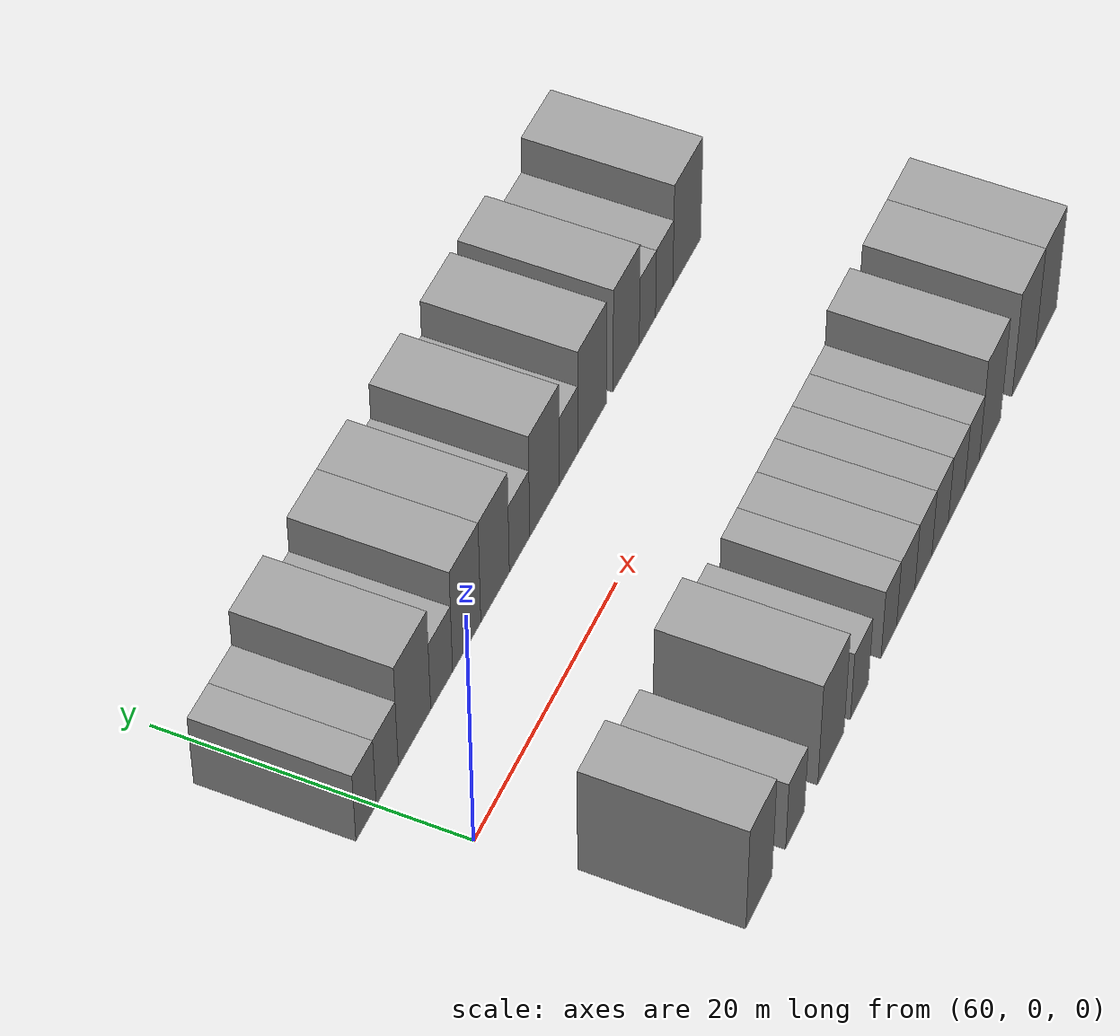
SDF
<sdf version="1.6">
 <world name="default">
  <model name="building_13">
   <static>1</static>
   <pose>58.6857 11.0000 0 0.000000 0.000000 1.570796</pose>
   <link name="link">
    <pose>0 0 3.00 0 0 0</pose>
    <collision name="collision"><geometry><box><size>10.0000 2.6495 6.0000</size></box></geometry></collision>
    <visual name="visual">
     <cast_shadows>0</cast_shadows>
     <geometry><box><size>10.0000 2.6495 6.0000</size></box></geometry>
     <material>
      <script>
       <uri>model://grey_wall/materials/scripts</uri>
       <uri>model://grey_wall/materials/textures</uri>
       <name>vrc/grey_wall</name>
      </script>
     </material>
    </visual>
   </link>
  </model>
  <model name="building_14">
   <static>1</static>
   <pose>61.4664 11.0000 0 0.000000 0.000000 1.570796</pose>
   <link name="link">
    <pose>0 0 3.00 0 0 0</pose>
    <collision name="collision"><geometry><box><size>10.0000 2.9119 6.0000</size></box></geometry></collision>
    <visual name="visual">
     <cast_shadows>0</cast_shadows>
     <geometry><box><size>10.0000 2.9119 6.0000</size></box></geometry>
     <material>
      <script>
       <uri>model://grey_wall/materials/scripts</uri>
       <uri>model://grey_wall/materials/textures</uri>
       <name>vrc/grey_wall</name>
      </script>
     </material>
    </visual>
   </link>
  </model>
  <model name="building_15">
   <static>1</static>
   <pose>65.0920 11.0000 0 0.000000 0.000000 1.570796</pose>
   <link name="link">
    <pose>0 0 4.50 0 0 0</pose>
    <collision name="collision"><geometry><box><size>10.0000 4.3392 9.0000</size></box></geometry></collision>
    <visual name="visual">
     <cast_shadows>0</cast_shadows>
     <geometry><box><size>10.0000 4.3392 9.0000</size></box></geometry>
     <material>
      <script>
       <uri>model://grey_wall/materials/scripts</uri>
       <uri>model://grey_wall/materials/textures</uri>
       <name>vrc/grey_wall</name>
      </script>
     </material>
    </visual>
   </link>
  </model>
  <model name="building_16">
   <static>1</static>
   <pose>68.7503 11.0000 0 0.000000 0.000000 1.570796</pose>
   <link name="link">
    <pose>0 0 3.00 0 0 0</pose>
    <collision name="collision"><geometry><box><size>10.0000 2.9774 6.0000</size></box></geometry></collision>
    <visual name="visual">
     <cast_shadows>0</cast_shadows>
     <geometry><box><size>10.0000 2.9774 6.0000</size></box></geometry>
     <material>
      <script>
       <uri>model://grey_wall/materials/scripts</uri>
       <uri>model://grey_wall/materials/textures</uri>
       <name>vrc/grey_wall</name>
      </script>
     </material>
    </visual>
   </link>
  </model>
  <model name="building_17">
   <static>1</static>
   <pose>72.1875 11.0000 0 0.000000 0.000000 1.570796</pose>
   <link name="link">
    <pose>0 0 4.50 0 0 0</pose>
    <collision name="collision"><geometry><box><size>10.0000 3.8970 9.0000</size></box></geometry></collision>
    <visual name="visual">
     <cast_shadows>0</cast_shadows>
     <geometry><box><size>10.0000 3.8970 9.0000</size></box></geometry>
     <material>
      <script>
       <uri>model://grey_wall/materials/scripts</uri>
       <uri>model://grey_wall/materials/textures</uri>
       <name>vrc/grey_wall</name>
      </script>
     </material>
    </visual>
   </link>
  </model>
  <model name="building_18">
   <static>1</static>
   <pose>76.1417 11.0000 0 0.000000 0.000000 1.570796</pose>
   <link name="link">
    <pose>0 0 4.50 0 0 0</pose>
    <collision name="collision"><geometry><box><size>10.0000 4.0115 9.0000</size></box></geometry></collision>
    <visual name="visual">
     <cast_shadows>0</cast_shadows>
     <geometry><box><size>10.0000 4.0115 9.0000</size></box></geometry>
     <material>
      <script>
       <uri>model://grey_wall/materials/scripts</uri>
       <uri>model://grey_wall/materials/textures</uri>
       <name>vrc/grey_wall</name>
      </script>
     </material>
    </visual>
   </link>
  </model>
  <model name="building_19">
   <static>1</static>
   <pose>79.6053 11.0000 0 0.000000 0.000000 1.570796</pose>
   <link name="link">
    <pose>0 0 3.00 0 0 0</pose>
    <collision name="collision"><geometry><box><size>10.0000 2.9156 6.0000</size></box></geometry></collision>
    <visual name="visual">
     <cast_shadows>0</cast_shadows>
     <geometry><box><size>10.0000 2.9156 6.0000</size></box></geometry>
     <material>
      <script>
       <uri>model://grey_wall/materials/scripts</uri>
       <uri>model://grey_wall/materials/textures</uri>
       <name>vrc/grey_wall</name>
      </script>
     </material>
    </visual>
   </link>
  </model>
  <model name="building_20">
   <static>1</static>
   <pose>83.2097 11.0000 0 0.000000 0.000000 1.570796</pose>
   <link name="link">
    <pose>0 0 4.50 0 0 0</pose>
    <collision name="collision"><geometry><box><size>10.0000 4.2931 9.0000</size></box></geometry></collision>
    <visual name="visual">
     <cast_shadows>0</cast_shadows>
     <geometry><box><size>10.0000 4.2931 9.0000</size></box></geometry>
     <material>
      <script>
       <uri>model://grey_wall/materials/scripts</uri>
       <uri>model://grey_wall/materials/textures</uri>
       <name>vrc/grey_wall</name>
      </script>
     </material>
    </visual>
   </link>
  </model>
  <model name="building_21">
   <static>1</static>
   <pose>86.7155 11.0000 0 0.000000 0.000000 1.570796</pose>
   <link name="link">
    <pose>0 0 3.00 0 0 0</pose>
    <collision name="collision"><geometry><box><size>10.0000 2.7185 6.0000</size></box></geometry></collision>
    <visual name="visual">
     <cast_shadows>0</cast_shadows>
     <geometry><box><size>10.0000 2.7185 6.0000</size></box></geometry>
     <material>
      <script>
       <uri>model://grey_wall/materials/scripts</uri>
       <uri>model://grey_wall/materials/textures</uri>
       <name>vrc/grey_wall</name>
      </script>
     </material>
    </visual>
   </link>
  </model>
  <model name="building_22">
   <static>1</static>
   <pose>90.1966 11.0000 0 0.000000 0.000000 1.570796</pose>
   <link name="link">
    <pose>0 0 4.50 0 0 0</pose>
    <collision name="collision"><geometry><box><size>10.0000 4.2436 9.0000</size></box></geometry></collision>
    <visual name="visual">
     <cast_shadows>0</cast_shadows>
     <geometry><box><size>10.0000 4.2436 9.0000</size></box></geometry>
     <material>
      <script>
       <uri>model://grey_wall/materials/scripts</uri>
       <uri>model://grey_wall/materials/textures</uri>
       <name>vrc/grey_wall</name>
      </script>
     </material>
    </visual>
   </link>
  </model>
  <model name="building_23">
   <static>1</static>
   <pose>95.3163 11.0000 0 0.000000 0.000000 1.570796</pose>
   <link name="link">
    <pose>0 0 4.50 0 0 0</pose>
    <collision name="collision"><geometry><box><size>10.0000 3.9959 9.0000</size></box></geometry></collision>
    <visual name="visual">
     <cast_shadows>0</cast_shadows>
     <geometry><box><size>10.0000 3.9959 9.0000</size></box></geometry>
     <material>
      <script>
       <uri>model://grey_wall/materials/scripts</uri>
       <uri>model://grey_wall/materials/textures</uri>
       <name>vrc/grey_wall</name>
      </script>
     </material>
    </visual>
   </link>
  </model>
  <model name="building_24">
   <static>1</static>
   <pose>98.5761 11.0000 0 0.000000 0.000000 1.570796</pose>
   <link name="link">
    <pose>0 0 3.00 0 0 0</pose>
    <collision name="collision"><geometry><box><size>10.0000 2.5237 6.0000</size></box></geometry></collision>
    <visual name="visual">
     <cast_shadows>0</cast_shadows>
     <geometry><box><size>10.0000 2.5237 6.0000</size></box></geometry>
     <material>
      <script>
       <uri>model://grey_wall/materials/scripts</uri>
       <uri>model://grey_wall/materials/textures</uri>
       <name>vrc/grey_wall</name>
      </script>
     </material>
    </visual>
   </link>
  </model>
  <model name="building_25">
   <static>1</static>
   <pose>101.1797 11.0000 0 0.000000 0.000000 1.570796</pose>
   <link name="link">
    <pose>0 0 3.00 0 0 0</pose>
    <collision name="collision"><geometry><box><size>10.0000 2.6833 6.0000</size></box></geometry></collision>
    <visual name="visual">
     <cast_shadows>0</cast_shadows>
     <geometry><box><size>10.0000 2.6833 6.0000</size></box></geometry>
     <material>
      <script>
       <uri>model://grey_wall/materials/scripts</uri>
       <uri>model://grey_wall/materials/textures</uri>
       <name>vrc/grey_wall</name>
      </script>
     </material>
    </visual>
   </link>
  </model>
  <model name="building_26">
   <static>1</static>
   <pose>104.7301 11.0000 0 0.000000 0.000000 1.570796</pose>
   <link name="link">
    <pose>0 0 4.50 0 0 0</pose>
    <collision name="collision"><geometry><box><size>10.0000 4.4175 9.0000</size></box></geometry></collision>
    <visual name="visual">
     <cast_shadows>0</cast_shadows>
     <geometry><box><size>10.0000 4.4175 9.0000</size></box></geometry>
     <material>
      <script>
       <uri>model://grey_wall/materials/scripts</uri>
       <uri>model://grey_wall/materials/textures</uri>
       <name>vrc/grey_wall</name>
      </script>
     </material>
    </visual>
   </link>
  </model>
  <model name="building_68">
   <static>1</static>
   <pose>62.3948 -11.0000 0 0.000000 0.000000 1.570796</pose>
   <link name="link">
    <pose>0 0 4.50 0 0 0</pose>
    <collision name="collision"><geometry><box><size>10.0000 3.7947 9.0000</size></box></geometry></collision>
    <visual name="visual">
     <cast_shadows>0</cast_shadows>
     <geometry><box><size>10.0000 3.7947 9.0000</size></box></geometry>
     <material>
      <script>
       <uri>model://grey_wall/materials/scripts</uri>
       <uri>model://grey_wall/materials/textures</uri>
       <name>vrc/grey_wall</name>
      </script>
     </material>
    </visual>
   </link>
  </model>
  <model name="building_69">
   <static>1</static>
   <pose>67.6923 -11.0000 0 0.000000 0.000000 1.570796</pose>
   <link name="link">
    <pose>0 0 3.00 0 0 0</pose>
    <collision name="collision"><geometry><box><size>10.0000 2.8003 6.0000</size></box></geometry></collision>
    <visual name="visual">
     <cast_shadows>0</cast_shadows>
     <geometry><box><size>10.0000 2.8003 6.0000</size></box></geometry>
     <material>
      <script>
       <uri>model://grey_wall/materials/scripts</uri>
       <uri>model://grey_wall/materials/textures</uri>
       <name>vrc/grey_wall</name>
      </script>
     </material>
    </visual>
   </link>
  </model>
  <model name="building_70">
   <static>1</static>
   <pose>73.0861 -11.0000 0 0.000000 0.000000 1.570796</pose>
   <link name="link">
    <pose>0 0 4.50 0 0 0</pose>
    <collision name="collision"><geometry><box><size>10.0000 3.9872 9.0000</size></box></geometry></collision>
    <visual name="visual">
     <cast_shadows>0</cast_shadows>
     <geometry><box><size>10.0000 3.9872 9.0000</size></box></geometry>
     <material>
      <script>
       <uri>model://grey_wall/materials/scripts</uri>
       <uri>model://grey_wall/materials/textures</uri>
       <name>vrc/grey_wall</name>
      </script>
     </material>
    </visual>
   </link>
  </model>
  <model name="building_71">
   <static>1</static>
   <pose>77.4678 -11.0000 0 0.000000 0.000000 1.570796</pose>
   <link name="link">
    <pose>0 0 3.00 0 0 0</pose>
    <collision name="collision"><geometry><box><size>10.0000 2.7763 6.0000</size></box></geometry></collision>
    <visual name="visual">
     <cast_shadows>0</cast_shadows>
     <geometry><box><size>10.0000 2.7763 6.0000</size></box></geometry>
     <material>
      <script>
       <uri>model://grey_wall/materials/scripts</uri>
       <uri>model://grey_wall/materials/textures</uri>
       <name>vrc/grey_wall</name>
      </script>
     </material>
    </visual>
   </link>
  </model>
  <model name="building_72">
   <static>1</static>
   <pose>82.0760 -11.0000 0 0.000000 0.000000 1.570796</pose>
   <link name="link">
    <pose>0 0 3.00 0 0 0</pose>
    <collision name="collision"><geometry><box><size>10.0000 2.4400 6.0000</size></box></geometry></collision>
    <visual name="visual">
     <cast_shadows>0</cast_shadows>
     <geometry><box><size>10.0000 2.4400 6.0000</size></box></geometry>
     <material>
      <script>
       <uri>model://grey_wall/materials/scripts</uri>
       <uri>model://grey_wall/materials/textures</uri>
       <name>vrc/grey_wall</name>
      </script>
     </material>
    </visual>
   </link>
  </model>
  <model name="building_73">
   <static>1</static>
   <pose>84.7548 -11.0000 0 0.000000 0.000000 1.570796</pose>
   <link name="link">
    <pose>0 0 3.00 0 0 0</pose>
    <collision name="collision"><geometry><box><size>10.0000 2.9176 6.0000</size></box></geometry></collision>
    <visual name="visual">
     <cast_shadows>0</cast_shadows>
     <geometry><box><size>10.0000 2.9176 6.0000</size></box></geometry>
     <material>
      <script>
       <uri>model://grey_wall/materials/scripts</uri>
       <uri>model://grey_wall/materials/textures</uri>
       <name>vrc/grey_wall</name>
      </script>
     </material>
    </visual>
   </link>
  </model>
  <model name="building_74">
   <static>1</static>
   <pose>87.5928 -11.0000 0 0.000000 0.000000 1.570796</pose>
   <link name="link">
    <pose>0 0 3.00 0 0 0</pose>
    <collision name="collision"><geometry><box><size>10.0000 2.7585 6.0000</size></box></geometry></collision>
    <visual name="visual">
     <cast_shadows>0</cast_shadows>
     <geometry><box><size>10.0000 2.7585 6.0000</size></box></geometry>
     <material>
      <script>
       <uri>model://grey_wall/materials/scripts</uri>
       <uri>model://grey_wall/materials/textures</uri>
       <name>vrc/grey_wall</name>
      </script>
     </material>
    </visual>
   </link>
  </model>
  <model name="building_75">
   <static>1</static>
   <pose>90.3208 -11.0000 0 0.000000 0.000000 1.570796</pose>
   <link name="link">
    <pose>0 0 3.00 0 0 0</pose>
    <collision name="collision"><geometry><box><size>10.0000 2.6973 6.0000</size></box></geometry></collision>
    <visual name="visual">
     <cast_shadows>0</cast_shadows>
     <geometry><box><size>10.0000 2.6973 6.0000</size></box></geometry>
     <material>
      <script>
       <uri>model://grey_wall/materials/scripts</uri>
       <uri>model://grey_wall/materials/textures</uri>
       <name>vrc/grey_wall</name>
      </script>
     </material>
    </visual>
   </link>
  </model>
  <model name="building_76">
   <static>1</static>
   <pose>93.0268 -11.0000 0 0.000000 0.000000 1.570796</pose>
   <link name="link">
    <pose>0 0 3.00 0 0 0</pose>
    <collision name="collision"><geometry><box><size>10.0000 2.7148 6.0000</size></box></geometry></collision>
    <visual name="visual">
     <cast_shadows>0</cast_shadows>
     <geometry><box><size>10.0000 2.7148 6.0000</size></box></geometry>
     <material>
      <script>
       <uri>model://grey_wall/materials/scripts</uri>
       <uri>model://grey_wall/materials/textures</uri>
       <name>vrc/grey_wall</name>
      </script>
     </material>
    </visual>
   </link>
  </model>
  <model name="building_77">
   <static>1</static>
   <pose>95.6089 -11.0000 0 0.000000 0.000000 1.570796</pose>
   <link name="link">
    <pose>0 0 3.00 0 0 0</pose>
    <collision name="collision"><geometry><box><size>10.0000 2.4494 6.0000</size></box></geometry></collision>
    <visual name="visual">
     <cast_shadows>0</cast_shadows>
     <geometry><box><size>10.0000 2.4494 6.0000</size></box></geometry>
     <material>
      <script>
       <uri>model://grey_wall/materials/scripts</uri>
       <uri>model://grey_wall/materials/textures</uri>
       <name>vrc/grey_wall</name>
      </script>
     </material>
    </visual>
   </link>
  </model>
  <model name="building_78">
   <static>1</static>
   <pose>98.6635 -11.0000 0 0.000000 0.000000 1.570796</pose>
   <link name="link">
    <pose>0 0 4.50 0 0 0</pose>
    <collision name="collision"><geometry><box><size>10.0000 3.6598 9.0000</size></box></geometry></collision>
    <visual name="visual">
     <cast_shadows>0</cast_shadows>
     <geometry><box><size>10.0000 3.6598 9.0000</size></box></geometry>
     <material>
      <script>
       <uri>model://grey_wall/materials/scripts</uri>
       <uri>model://grey_wall/materials/textures</uri>
       <name>vrc/grey_wall</name>
      </script>
     </material>
    </visual>
   </link>
  </model>
  <model name="building_79">
   <static>1</static>
   <pose>104.5097 -11.0000 0 0.000000 0.000000 1.570796</pose>
   <link name="link">
    <pose>0 0 4.50 0 0 0</pose>
    <collision name="collision"><geometry><box><size>10.0000 4.0324 9.0000</size></box></geometry></collision>
    <visual name="visual">
     <cast_shadows>0</cast_shadows>
     <geometry><box><size>10.0000 4.0324 9.0000</size></box></geometry>
     <material>
      <script>
       <uri>model://grey_wall/materials/scripts</uri>
       <uri>model://grey_wall/materials/textures</uri>
       <name>vrc/grey_wall</name>
      </script>
     </material>
    </visual>
   </link>
  </model>
  <model name="building_80">
   <static>1</static>
   <pose>108.3980 -11.0000 0 0.000000 0.000000 1.570796</pose>
   <link name="link">
    <pose>0 0 4.50 0 0 0</pose>
    <collision name="collision"><geometry><box><size>10.0000 3.7443 9.0000</size></box></geometry></collision>
    <visual name="visual">
     <cast_shadows>0</cast_shadows>
     <geometry><box><size>10.0000 3.7443 9.0000</size></box></geometry>
     <material>
      <script>
       <uri>model://grey_wall/materials/scripts</uri>
       <uri>model://grey_wall/materials/textures</uri>
       <name>vrc/grey_wall</name>
      </script>
     </material>
    </visual>
   </link>
  </model>
 </world>
</sdf>
